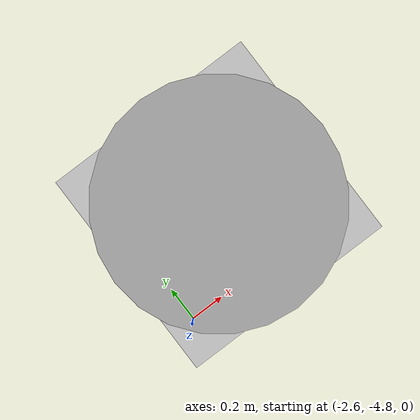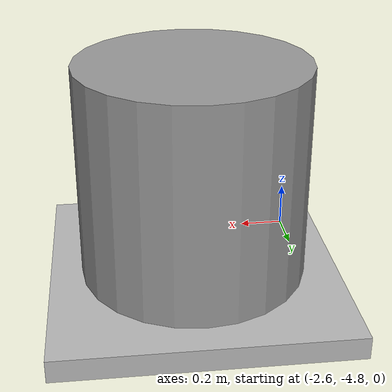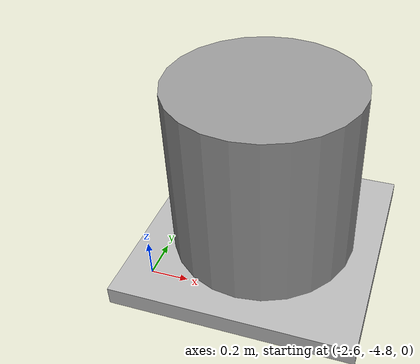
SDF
<sdf version="1.7">
 <world name="my_world">
  <model name="ground_plane">
   <static>1</static>
   <link name="link">
    <collision name="collision">
     <geometry><plane><normal>0 0 1</normal><size>100 100</size></plane></geometry>
     <surface>
      <contact><collide_bitmask>65535</collide_bitmask></contact>
      <friction><ode><mu>100</mu><mu2>50</mu2></ode></friction>
     </surface>
    </collision>
    <visual name="visual">
     <cast_shadows>0</cast_shadows>
     <geometry><plane><normal>0 0 1</normal><size>100 100</size></plane></geometry>
     <material>
      <script><uri>file://media/materials/scripts/gazebo.material</uri><name>Gazebo/Grey</name></script>
     </material>
    </visual>
   </link>
  </model>
  <light name="sun" type="directional">
   <pose>0 0 10 0 -0 0</pose>
   <diffuse>0.8 0.8 0.8 1</diffuse>
   <specular>0.2 0.2 0.2 1</specular>
   <attenuation>
    <range>1000</range>
    <constant>0.9</constant>
    <linear>0.01</linear>
    <quadratic>0.001</quadratic>
   </attenuation>
   <direction>-0.5 0.1 -0.9</direction>
   <spot><inner_angle>0</inner_angle><outer_angle>0</outer_angle><falloff>0</falloff></spot>
  </light>
  <physics name="default_physics" type="ode">
   <max_step_size>0.001</max_step_size>
   <real_time_factor>1</real_time_factor>
   <real_time_update_rate>1000</real_time_update_rate>
   <ode>
    <solver>
     <type>quick</type>
     <iters>100</iters>
     <sor>1.3</sor>
     <use_dynamic_moi_rescaling>0</use_dynamic_moi_rescaling>
    </solver>
    <constraints>
     <cfm>1e-05</cfm>
     <erp>0.8</erp>
     <contact_max_correcting_vel>100</contact_max_correcting_vel>
     <contact_surface_layer>0.001</contact_surface_layer>
    </constraints>
   </ode>
  </physics>
  <model name="flat_ground_plane">
   <static>1</static>
   <link name="link">
    <collision name="collision">
     <geometry><plane><normal>0 0 1</normal><size>100 100</size></plane></geometry>
     <surface>
      <contact><ode><soft_cfm>1e-05</soft_cfm><soft_erp>0.8</soft_erp><kp>1e+06</kp><kd>1</kd></ode></contact>
     </surface>
    </collision>
    <visual name="visual"><geometry><plane><normal>0 0 1</normal><size>100 100</size></plane></geometry></visual>
   </link>
  </model>
  <model name="unit_cylinder">
   <pose>-1.21399 2.30046 -17205 3e-06 4e-06 -0</pose>
   <link name="cylinder_link">
    <pose>-1.21399 2.30046 0.499997 3e-06 4e-06 -0</pose>
    <inertial>
     <inertia><ixx>1</ixx><ixy>0</ixy><ixz>0</ixz><iyy>1</iyy><iyz>0</iyz><izz>1</izz></inertia>
     <mass>1</mass>
    </inertial>
    <velocity>0 0 0 0 -0 0</velocity>
    <acceleration>0 0 -9.8 0 -0 0</acceleration>
    <wrench>0 0 -9.8 0 -0 0</wrench>
   </link>
   <scale>1 1 1</scale>
  </model>
  <gravity>0 0 -9.8</gravity>
  <magnetic_field>6e-06 2.3e-05 -4.2e-05</magnetic_field>
  <atmosphere type="adiabatic"/>
  <scene><ambient>0.4 0.4 0.4 1</ambient><background>0.7 0.7 0.7 1</background><shadows>1</shadows></scene>
  <audio><device>default</device></audio>
  <spherical_coordinates>
   <surface_model>EARTH_WGS84</surface_model>
   <latitude_deg>0</latitude_deg>
   <longitude_deg>0</longitude_deg>
   <elevation>0</elevation>
   <heading_deg>0</heading_deg>
  </spherical_coordinates>
  <model name="unit_cylinder_0">
   <pose>-2.10284 -4.38123 0.499997 4e-06 4e-06 -0</pose>
   <link name="link">
    <inertial>
     <mass>1</mass>
     <inertia><ixx>0.145833</ixx><ixy>0</ixy><ixz>0</ixz><iyy>0.145833</iyy><iyz>0</iyz><izz>0.125</izz></inertia>
    </inertial>
    <collision name="collision">
     <geometry><cylinder><radius>0.5</radius><length>1</length></cylinder></geometry>
    </collision>
    <visual name="visual">
     <geometry><cylinder><radius>0.5</radius><length>1</length></cylinder></geometry>
     <material>
      <script><name>Gazebo/Grey</name><uri>file://media/materials/scripts/gazebo.material</uri></script>
     </material>
    </visual>
   </link>
  </model>
 </world>
</sdf>
